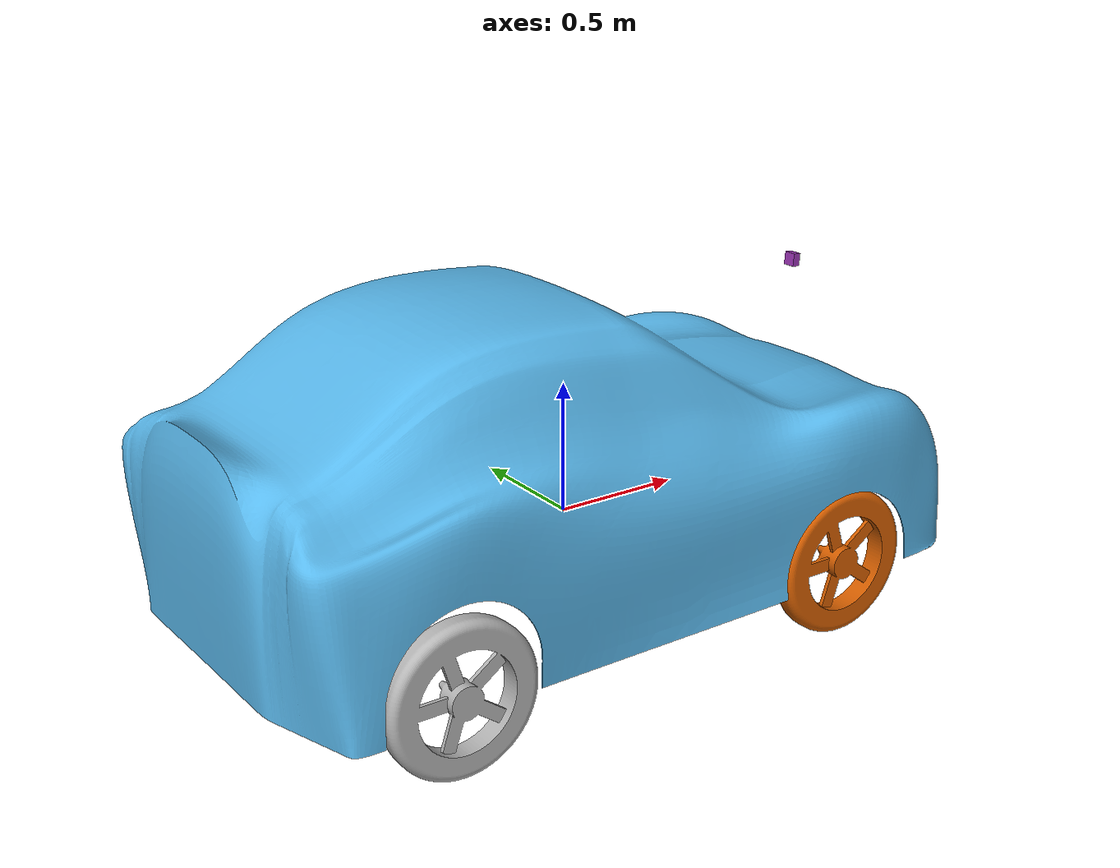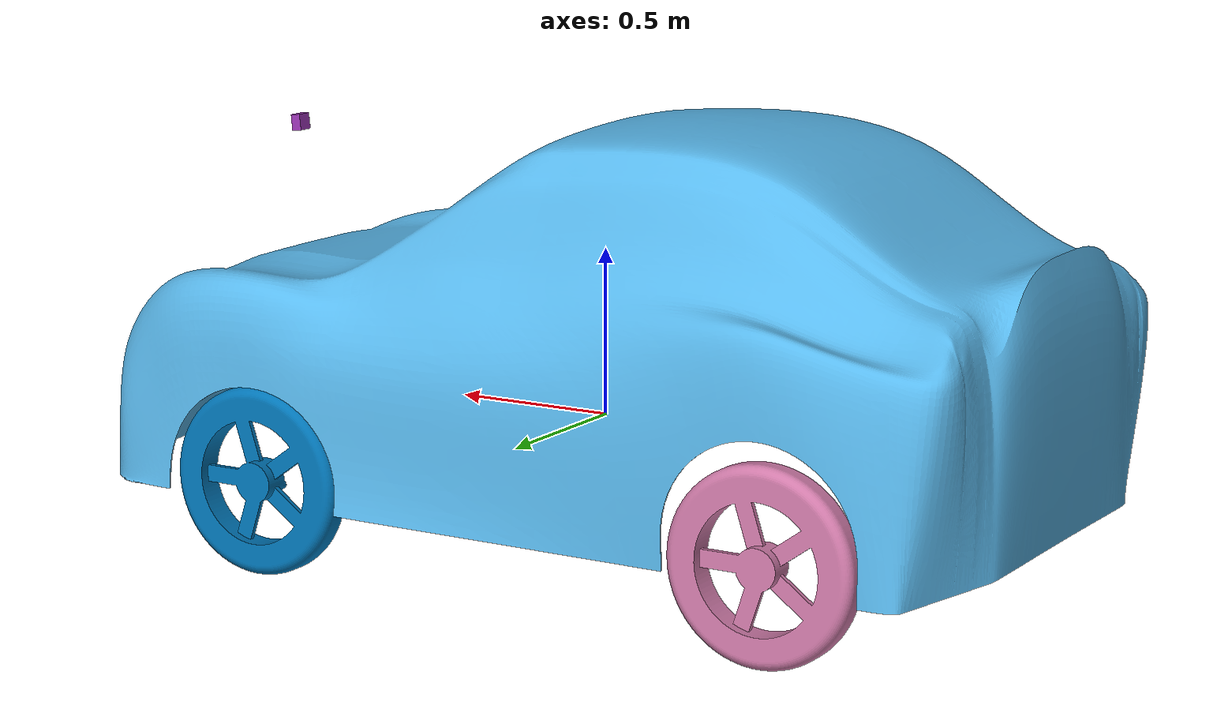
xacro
<?xml version="1.0"?>

<robot xmlns:xacro="http://www.ros.org/wiki/xacro" name="car">

    <xacro:include filename="inertial.xacro" />
    <xacro:include filename="robot_ros2_control.xacro" />
    <xacro:include filename="shell.urdf.xacro" />
    <xacro:include filename="wheels.urdf.xacro" />
    <xacro:include filename="camera.urdf.xacro" />

    <xacro:include filename="materials.xacro" />
    <xacro:include filename="gazebo_materials.xacro" />

</robot>

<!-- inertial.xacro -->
<robot name="car" xmlns:xacro="http://www.ros.org/wiki/xacro">

    <xacro:macro name="inertial_box" params="mass x y z xyz rpy">
        <inertial>
            <origin xyz="${xyz}" rpy="${rpy}" />
            <mass value="${mass}" />
            <inertia ixx="${(1/12) * mass * (y*y + z*z)}" ixy="0.0" ixz="0.0"
                iyy="${(1/12) * mass * (x*x + z*z)}" iyz="0.0"
                izz="${(1/12) * mass * (x*x + y*y)}" />
        </inertial>
    </xacro:macro>

    <xacro:macro name="inertial_cylinder" params="mass radius length xyz rpy">
        <inertial>
            <origin xyz="${xyz}" rpy="${rpy}" />
            <mass value="${mass}" />
            <inertia ixx="${(1/12) * mass * (3*radius*radius + length*length)}" ixy="0.0" ixz="0.0"
                iyy="${(1/12) * mass * (3*radius*radius + length*length)}" iyz="0.0"
                izz="${(1/2) * mass * (radius*radius)}" />
        </inertial>

    </xacro:macro>

    <xacro:macro name="inertial_sphere" params="mass radius xyz rpy">
        <inertial>
            <origin xyz="${xyz}" rpy="${rpy}" />
            <mass value="${mass}" />
            <inertia ixx="${(2/5) * mass * (radius*radius)}" ixy="0.0" ixz="0.0"
                iyy="${(2/5) * mass * (radius*radius)}" iyz="0.0"
                izz="${(2/5) * mass * (radius*radius)}" />
        </inertial>
    </xacro:macro>

</robot>

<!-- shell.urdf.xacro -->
<robot xmlns:xacro="http://www.ros.org/wiki/xacro" name="car">
    <link name="base_link" />
    <link name="shell_link">
        <visual>
            <origin xyz="0.0 0.0 0.0" rpy="0.0 0.0 ${pi / 2}" />
            <geometry>
                <mesh filename="file://$(find driver_assistant)/meshes/shell.dae" />
            </geometry>
        </visual>
        <collision>
            <origin xyz="0.0 0.0 0.0" rpy="0.0 0.0 0.0" />
            <geometry>
                <box size="2.95 1.55 1.1" />
            </geometry>
        </collision>
        <xacro:inertial_box mass="20" x="2.95" y="1.55" z="1.1" xyz="0.0 0.0 0.0" rpy="0.0 0.0 0.0" />
    </link>

    <joint name="shell_joint" type="fixed">
        <origin xyz="0.0 0.0 0.35" rpy="0.0 0.0 0.0" />
        <parent link="base_link" />
        <child link="shell_link" />
        <axis xyz="0.0 0.0 0.0" />
        <limit lower="0.0" upper="0.0" effort="0.0" velocity="0.0" />
    </joint>

</robot>

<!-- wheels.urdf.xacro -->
<robot xmlns:xacro="http://www.ros.org/wiki/xacro" name="car">

    <xacro:property name="wheel_radius" value="0.280" />
    <xacro:property name="wheel_length" value="0.095" />

    <xacro:property name="front_wheel_x" value="0.765" />
    <xacro:property name="front_wheel_y" value="0.6845" />

    <xacro:property name="rear_wheel_x" value="-0.93" />
    <xacro:property name="rear_wheel_y" value="0.75" />

    <xacro:macro name="wheel_link" params="name direction">
        <link name="${name}">
            <visual>
                <xacro:if value="${direction == 'left'}">
                    <origin xyz="0.0 -${0.048 + 0.021} 0.0" rpy="0.0 0.0 ${pi}" />
                </xacro:if>

                <xacro:if value="${direction == 'right'}">
                    <origin xyz="0.0 ${0.048 + 0.021} 0.0" rpy="0.0 0.0 0.0" />
                </xacro:if>

                <geometry>
                    <mesh filename="file://$(find driver_assistant)/meshes/wheel.dae" />
                </geometry>
            </visual>
            <collision>
                <origin xyz="0.0 0.0 0.0" rpy="${pi / 2} 0.0 0.0" />
                <geometry>
                    <cylinder radius="${wheel_radius}" length="${wheel_length}" />
                </geometry>
            </collision>

            <xacro:inertial_cylinder mass="0.5" radius="${wheel_radius}" length="${wheel_length}"
                xyz="0 0 0"
                rpy="${pi/2} 0 0" />
        </link>
    </xacro:macro>

    <link name="left_axle">
        <xacro:inertial_box mass="5" x="0.6" y="0.4" z="0.2" xyz="0.0 0.0 0.0" rpy="0.0 0.0 0.0" />
    </link>

    <link name="right_axle">
        <xacro:inertial_box mass="5" x="0.6" y="0.4" z="0.2" xyz="0.0 0.0 0.0" rpy="0.0 0.0 0.0" />
    </link>

    <xacro:wheel_link name="front_left_wheel" direction="left" />
    <xacro:wheel_link name="front_right_wheel" direction="right" />
    <xacro:wheel_link name="rear_left_wheel" direction="left" />
    <xacro:wheel_link name="rear_right_wheel" direction="right" />

    <joint name="front_left_steer_joint" type="revolute">
        <origin xyz="${front_wheel_x} ${front_wheel_y} -0.15" rpy="0.0 0.0 0.0" />
        <parent link="base_link" />
        <child link="left_axle" />
        <axis xyz="0.0 0.0 1.0" />
        <limit lower="-0.8" upper="0.8" effort="10000000.0" velocity="10000000.0" />
    </joint>

    <joint name="front_right_steer_joint" type="revolute">
        <origin xyz="${front_wheel_x} -${front_wheel_y} -0.15" rpy="0.0 0.0 0.0" />
        <parent link="base_link" />
        <child link="right_axle" />
        <axis xyz="0.0 0.0 1.0" />
        <limit lower="-0.8" upper="0.8" effort="10000000.0" velocity="10000000.0" />
    </joint>

    <joint name="front_left_wheel_joint" type="continuous">
        <parent link="left_axle" />
        <child link="front_left_wheel" />
        <origin xyz="0 0 0" rpy="0 0 0" />
        <axis xyz="0 1 0" />
    </joint>

    <joint name="front_right_wheel_joint" type="continuous">
        <parent link="right_axle" />
        <child link="front_right_wheel" />
        <origin xyz="0 0 0" rpy="0 0 0" />
        <axis xyz="0 1 0" />
    </joint>

    <joint name="rear_left_wheel_joint" type="continuous">
        <origin xyz="${rear_wheel_x} ${rear_wheel_y} -0.15" rpy="0.0 0.0 0.0" />
        <parent link="base_link" />
        <child link="rear_left_wheel" />
        <axis xyz="0 1 0" />
    </joint>

    <joint name="rear_right_wheel_joint" type="continuous">
        <origin xyz="${rear_wheel_x} -${rear_wheel_y} -0.15" rpy="0.0 0.0 0.0" />
        <parent link="base_link" />
        <child link="rear_right_wheel" />
        <axis xyz="0 1 0" />
    </joint>

</robot>

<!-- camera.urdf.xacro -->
<robot xmlns:xacro="http://www.ros.org/wiki/xacro" name="car">

    <xacro:macro name="camera" params="name xyz rpy">
        <link name="camera_${name}_link">
            <visual>
                <origin xyz="0.0 0.0 0.0" rpy="0.0 0.0 0.0" />
                <geometry>
                    <box size="0.032 0.05 0.05" />
                </geometry>
            </visual>
            <collision>
                <origin xyz="0.0 0.0 0.0" rpy="0.0 0.0 0.0" />
                <geometry>
                    <box size="0.032 0.05 0.05" />
                </geometry>
            </collision>
            <xacro:inertial_box mass="0.01" x="0.032" y="0.05" z="0.05" xyz="0 0 0" rpy="0 0 0" />
        </link>

        <joint name="camera_${name}_joint" type="fixed">
            <parent link="shell_link" />
            <child link="camera_${name}_link" />
            <origin xyz="${xyz}" rpy="${rpy}" />
        </joint>

        <gazebo reference="camera_${name}_link">
            <material>Gazebo/Purple</material>
            <sensor name="${name}" type="camera">
                <pose>0 0 0 0 0.20 0</pose>
                <visualize>true</visualize>
                <update_rate>60</update_rate>    <!-- kemira hz -->
                <camera>
                    <horizontal_fov>1.4</horizontal_fov>
                    <image>
                        <format>R8G8B8</format>
                        <width>640</width>
                        <height>480</height>
                    </image>
                    <clip>
                        <near>0.05</near>
                        <far>8.0</far>
                    </clip>
                </camera>
                <plugin name="camera_controller_${name}" filename="libgazebo_ros_camera.so">
                    <frame_name>camera_${name}_link</frame_name>
                </plugin>
            </sensor>

        </gazebo>
    </xacro:macro>

    <xacro:camera name="front" xyz="1.1 0.0 0.45" rpy="0 0.10 0" />
    <xacro:camera name="back" xyz="-1.475 0 0" rpy="0 0 ${pi}" />

</robot>

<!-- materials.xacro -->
<robot xmlns:xacro="http://www.ros.org/wiki/xacro">
    <material name="car_body"><color rgba="0.75 0.08 0.08 1.0"/></material>
    <material name="tire_black"><color rgba="0.06 0.06 0.06 1.0"/></material>
    <material name="camera_gray"><color rgba="0.2 0.2 0.25 1.0"/></material>
</robot>
